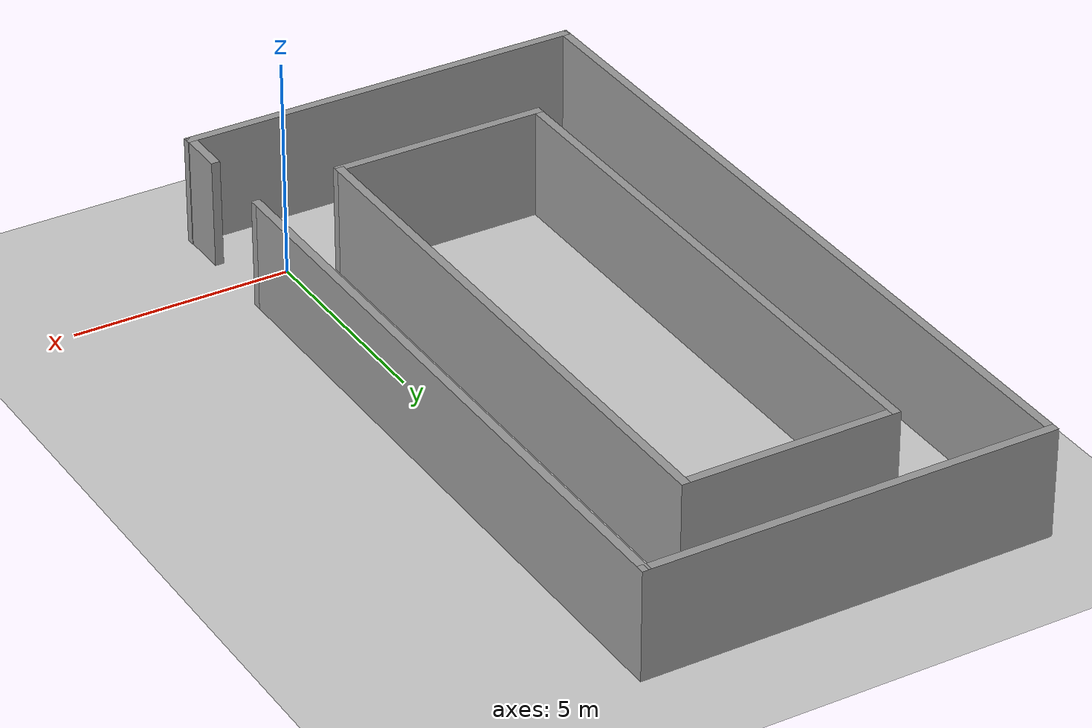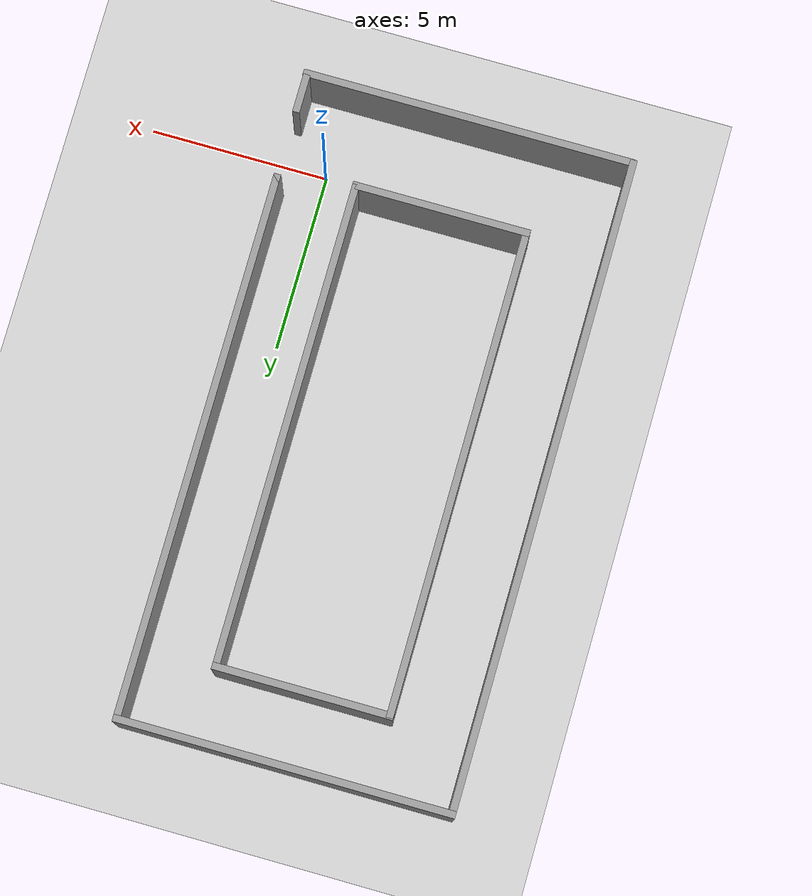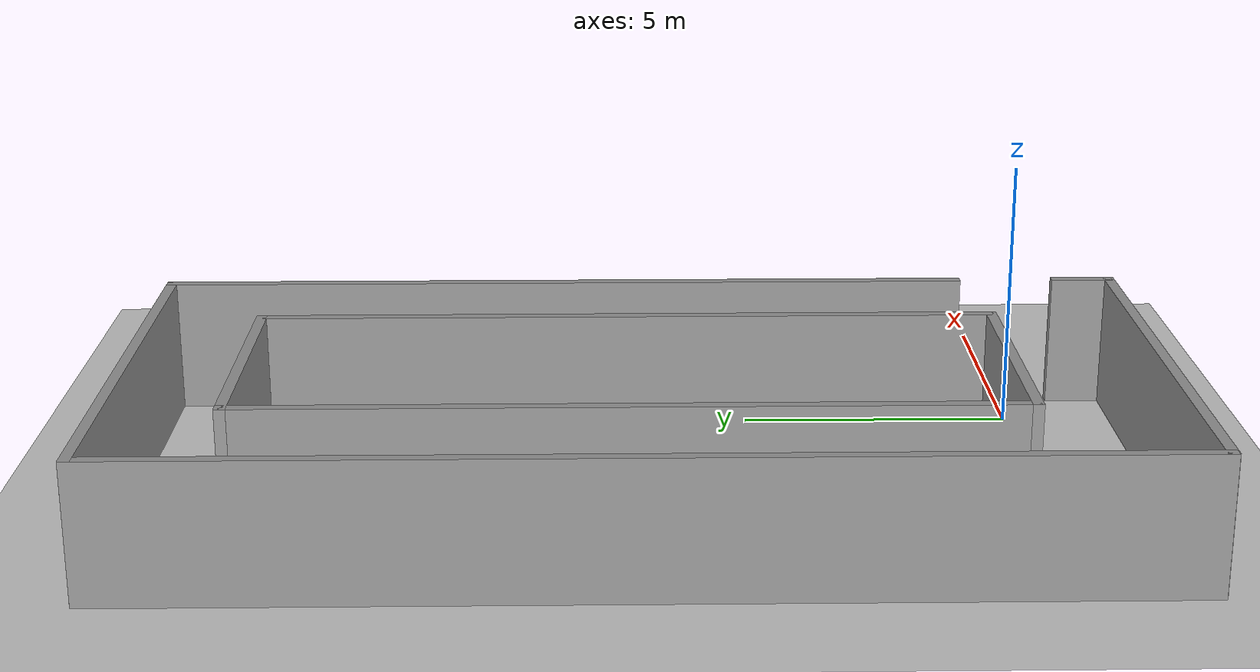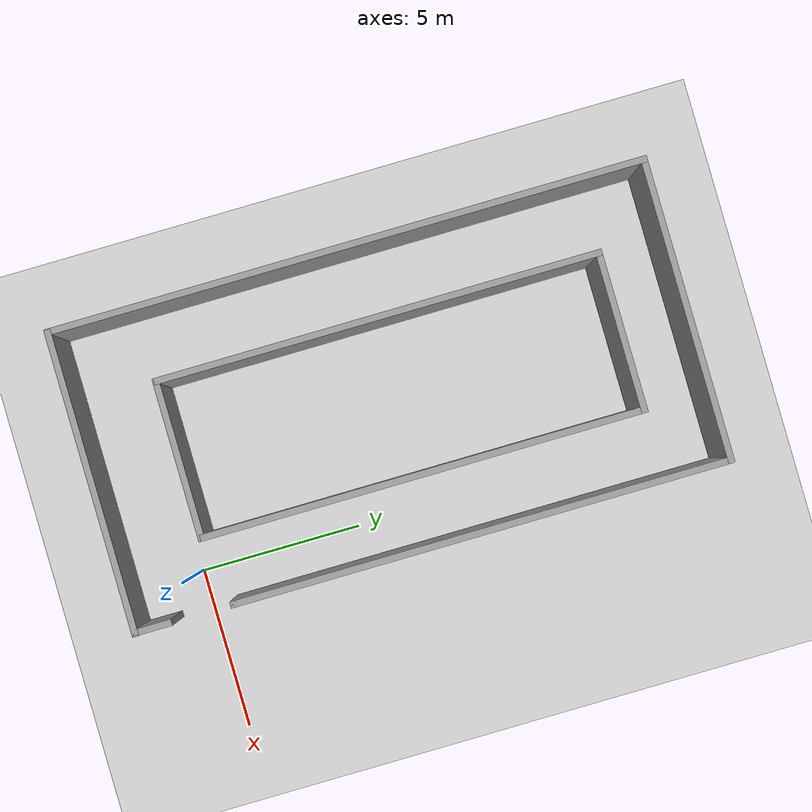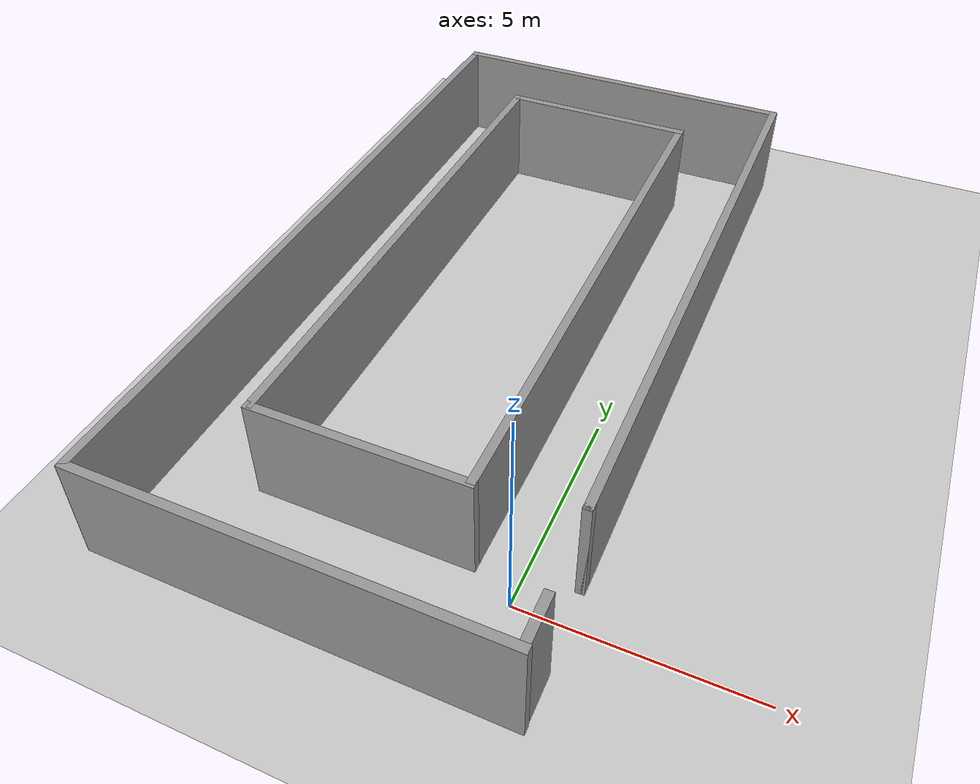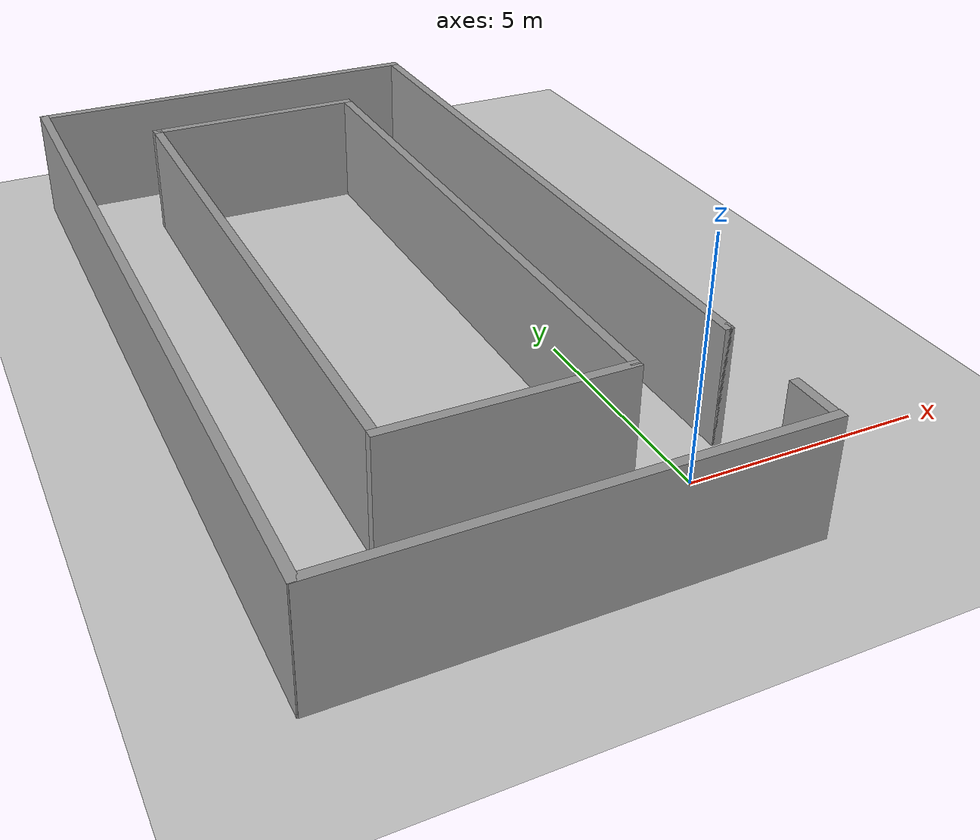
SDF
<sdf version="1.4">
 <world name="default">
  <physics type="ode">
   <gravity>0.000000 0.000000 -9.810000</gravity>
   <ode>
    <solver><type>quick</type><iters>20</iters><sor>1.000000</sor></solver>
    <constraints>
     <cfm>0.000000</cfm>
     <erp>0.200000</erp>
     <contact_max_correcting_vel>100.000000</contact_max_correcting_vel>
     <contact_surface_layer>0.000000</contact_surface_layer>
    </constraints>
   </ode>
   <real_time_update_rate>1000.000000</real_time_update_rate>
   <max_step_size>0.001000</max_step_size>
   <real_time_factor>1.000000</real_time_factor>
   <max_contacts>20</max_contacts>
  </physics>
  <light name="sun" type="directional">
   <pose>0.000000 0.000000 10.000000 0.000000 0.000000 0.000000</pose>
   <diffuse>0.800000 0.800000 0.800000 1.000000</diffuse>
   <specular>0.200000 0.200000 0.200000 1.000000</specular>
   <attenuation>
    <range>1000.000000</range>
    <constant>0.900000</constant>
    <linear>0.010000</linear>
    <quadratic>0.001000</quadratic>
   </attenuation>
   <direction>0.500000 0.100000 -0.900000</direction>
  </light>
  <model name="ground_plane">
   <static>1</static>
   <link name="link">
    <collision name="collision">
     <geometry>
      <plane><normal>0.000000 0.000000 1.000000</normal><size>1000.000000 1000.000000</size></plane>
     </geometry>
     <surface><friction><ode><mu>100.000000</mu><mu2>50.000000</mu2></ode></friction></surface>
    </collision>
    <visual name="visual">
     <cast_shadows>0</cast_shadows>
     <geometry>
      <plane><normal>0.000000 0.000000 1.000000</normal><size>100.000000 100.000000</size></plane>
     </geometry>
     <material>
      <script><uri>file://media/materials/scripts/gazebo.material</uri><name>Gazebo/Grey</name></script>
     </material>
    </visual>
    <velocity_decay><linear>0.000000</linear><angular>0.000000</angular></velocity_decay>
   </link>
  </model>
  <scene>
   <ambient>0.200000 0.200000 0.200000 1.000000</ambient>
   <background>0.700000 0.700000 0.700000 1.000000</background>
   <shadows>1</shadows>
  </scene>
  <include><uri>model://simple_loop_closure</uri><name>walls</name><pose>-6 2 0 0 0 1.5708</pose></include>
 </world>
</sdf>

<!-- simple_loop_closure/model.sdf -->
<sdf version='1.4'>
  <model name='SimpleLoopClosure'>
    <link name='Wall_0'>
      <collision name='Wall_0_Collision'>
        <geometry>
          <box>
            <size>9.376550 0.200000 2.500000</size>
          </box>
        </geometry>
        <pose>0.000000 0.000000 1.250000 0.000000 0.000000 0.000000</pose>
      </collision>
      <visual name='Wall_0_Visual'>
        <pose>0.000000 0.000000 1.250000 0.000000 0.000000 0.000000</pose>
        <geometry>
          <box>
            <size>9.376550 0.200000 2.500000</size>
          </box>
        </geometry>
        <material>
          <script>
            <uri>file://media/materials/scripts/gazebo.material</uri>
            <name>Gazebo/Grey</name>
          </script>
        </material>
      </visual>
      <velocity_decay>
        <linear>0.000000</linear>
        <angular>0.000000</angular>
      </velocity_decay>
      <pose>-4.130000 -2.529360 0.000000 0.000000 0.000000 -1.570800</pose>
    </link>
    <link name='Wall_11'>
      <collision name='Wall_11_Collision'>
        <geometry>
          <box>
            <size>13.685100 0.200000 2.500000</size>
          </box>
        </geometry>
        <pose>0.000000 0.000000 1.250000 0.000000 0.000000 0.000000</pose>
      </collision>
      <visual name='Wall_11_Visual'>
        <pose>0.000000 0.000000 1.250000 0.000000 0.000000 0.000000</pose>
        <geometry>
          <box>
            <size>13.685100 0.200000 2.500000</size>
          </box>
        </geometry>
        <material>
          <script>
            <uri>file://media/materials/scripts/gazebo.material</uri>
            <name>Gazebo/Grey</name>
          </script>
        </material>
      </visual>
      <velocity_decay>
        <linear>0.000000</linear>
        <angular>0.000000</angular>
      </velocity_decay>
      <pose>5.307810 -0.185623 0.000000 0.000000 0.000000 0.000000</pose>
    </link>
    <link name='Wall_12'>
      <collision name='Wall_12_Collision'>
        <geometry>
          <box>
            <size>4.988040 0.200000 2.500000</size>
          </box>
        </geometry>
        <pose>0.000000 0.000000 1.250000 0.000000 0.000000 0.000000</pose>
      </collision>
      <visual name='Wall_12_Visual'>
        <pose>0.000000 0.000000 1.250000 0.000000 0.000000 0.000000</pose>
        <geometry>
          <box>
            <size>4.988040 0.200000 2.500000</size>
          </box>
        </geometry>
        <material>
          <script>
            <uri>file://media/materials/scripts/gazebo.material</uri>
            <name>Gazebo/Grey</name>
          </script>
        </material>
      </visual>
      <velocity_decay>
        <linear>0.000000</linear>
        <angular>0.000000</angular>
      </velocity_decay>
      <pose>12.050400 -2.579640 0.000000 0.000000 0.000000 -1.570800</pose>
    </link>
    <link name='Wall_13'>
      <collision name='Wall_13_Collision'>
        <geometry>
          <box>
            <size>13.662000 0.200000 2.500000</size>
          </box>
        </geometry>
        <pose>0.000000 0.000000 1.250000 0.000000 0.000000 0.000000</pose>
      </collision>
      <visual name='Wall_13_Visual'>
        <pose>0.000000 0.000000 1.250000 0.000000 0.000000 0.000000</pose>
        <geometry>
          <box>
            <size>13.662000 0.200000 2.500000</size>
          </box>
        </geometry>
        <material>
          <script>
            <uri>file://media/materials/scripts/gazebo.material</uri>
            <name>Gazebo/Grey</name>
          </script>
        </material>
      </visual>
      <velocity_decay>
        <linear>0.000000</linear>
        <angular>0.000000</angular>
      </velocity_decay>
      <pose>5.319380 -4.973660 0.000000 0.000000 0.000000 3.141590</pose>
    </link>
    <link name='Wall_18'>
      <collision name='Wall_18_Collision'>
        <geometry>
          <box>
            <size>18.403800 0.200000 2.500000</size>
          </box>
        </geometry>
        <pose>0.000000 0.000000 1.250000 0.000000 0.000000 0.000000</pose>
      </collision>
      <visual name='Wall_18_Visual'>
        <pose>0.000000 0.000000 1.250000 0.000000 0.000000 0.000000</pose>
        <geometry>
          <box>
            <size>18.403800 0.200000 2.500000</size>
          </box>
        </geometry>
        <material>
          <script>
            <uri>file://media/materials/scripts/gazebo.material</uri>
            <name>Gazebo/Grey</name>
          </script>
        </material>
      </visual>
      <velocity_decay>
        <linear>0.000000</linear>
        <angular>0.000000</angular>
      </velocity_decay>
      <pose>4.983980 2.081180 0.000000 0.000000 0.000000 0.000000</pose>
    </link>
    <link name='Wall_19'>
      <collision name='Wall_19_Collision'>
        <geometry>
          <box>
            <size>9.382850 0.200000 2.500000</size>
          </box>
        </geometry>
        <pose>0.000000 0.000000 1.250000 0.000000 0.000000 0.000000</pose>
      </collision>
      <visual name='Wall_19_Visual'>
        <pose>0.000000 0.000000 1.250000 0.000000 0.000000 0.000000</pose>
        <geometry>
          <box>
            <size>9.382850 0.200000 2.500000</size>
          </box>
        </geometry>
        <material>
          <script>
            <uri>file://media/materials/scripts/gazebo.material</uri>
            <name>Gazebo/Grey</name>
          </script>
        </material>
      </visual>
      <velocity_decay>
        <linear>0.000000</linear>
        <angular>0.000000</angular>
      </velocity_decay>
      <pose>14.085900 -2.510250 0.000000 0.000000 0.000000 -1.570800</pose>
    </link>
    <link name='Wall_20'>
      <collision name='Wall_20_Collision'>
        <geometry>
          <box>
            <size>15.396800 0.200000 2.500000</size>
          </box>
        </geometry>
        <pose>0.000000 0.000000 1.250000 0.000000 0.000000 0.000000</pose>
      </collision>
      <visual name='Wall_20_Visual'>
        <pose>0.000000 0.000000 1.250000 0.000000 0.000000 0.000000</pose>
        <geometry>
          <box>
            <size>15.396800 0.200000 2.500000</size>
          </box>
        </geometry>
        <material>
          <script>
            <uri>file://media/materials/scripts/gazebo.material</uri>
            <name>Gazebo/Grey</name>
          </script>
        </material>
      </visual>
      <velocity_decay>
        <linear>0.000000</linear>
        <angular>0.000000</angular>
      </velocity_decay>
      <pose>6.487470 -7.101680 0.000000 0.000000 0.000000 3.141590</pose>
    </link>
    <link name='Wall_21'>
      <collision name='Wall_21_Collision'>
        <geometry>
          <box>
            <size>0.210000 0.200000 2.500000</size>
          </box>
        </geometry>
        <pose>0.000000 0.000000 1.250000 0.000000 0.000000 0.000000</pose>
      </collision>
      <visual name='Wall_21_Visual'>
        <pose>0.000000 0.000000 1.250000 0.000000 0.000000 0.000000</pose>
        <geometry>
          <box>
            <size>0.210000 0.200000 2.500000</size>
          </box>
        </geometry>
        <material>
          <script>
            <uri>file://media/materials/scripts/gazebo.material</uri>
            <name>Gazebo/Grey</name>
          </script>
        </material>
      </visual>
      <velocity_decay>
        <linear>0.000000</linear>
        <angular>0.000000</angular>
      </velocity_decay>
      <pose>-1.105930 -7.101680 0.000000 0.000000 0.000000 0.000000</pose>
    </link>
    <link name='Wall_29'>
      <collision name='Wall_29_Collision'>
        <geometry>
          <box>
            <size>1.194880 0.200000 2.500000</size>
          </box>
        </geometry>
        <pose>0.000000 0.000000 1.250000 0.000000 0.000000 0.000000</pose>
      </collision>
      <visual name='Wall_29_Visual'>
        <pose>0.000000 0.000000 1.250000 0.000000 0.000000 0.000000</pose>
        <geometry>
          <box>
            <size>1.194880 0.200000 2.500000</size>
          </box>
        </geometry>
        <material>
          <script>
            <uri>file://media/materials/scripts/gazebo.material</uri>
            <name>Gazebo/Grey</name>
          </script>
        </material>
      </visual>
      <velocity_decay>
        <linear>0.000000</linear>
        <angular>0.000000</angular>
      </velocity_decay>
      <pose>-3.597610 -7.101680 0.000000 0.000000 0.000000 0.000000</pose>
    </link>
    <link name='Wall_31'>
      <collision name='Wall_31_Collision'>
        <geometry>
          <box>
            <size>4.988040 0.200000 2.500000</size>
          </box>
        </geometry>
        <pose>0.000000 0.000000 1.250000 0.000000 0.000000 0.000000</pose>
      </collision>
      <visual name='Wall_31_Visual'>
        <pose>0.000000 0.000000 1.250000 0.000000 0.000000 0.000000</pose>
        <geometry>
          <box>
            <size>4.988040 0.200000 2.500000</size>
          </box>
        </geometry>
        <material>
          <script>
            <uri>file://media/materials/scripts/gazebo.material</uri>
            <name>Gazebo/Grey</name>
          </script>
        </material>
      </visual>
      <velocity_decay>
        <linear>0.000000</linear>
        <angular>0.000000</angular>
      </velocity_decay>
      <pose>-1.481020 -2.579640 0.000000 0.000000 0.000000 -1.570800</pose>
    </link>
    <static>1</static>
  </model>
</sdf>
